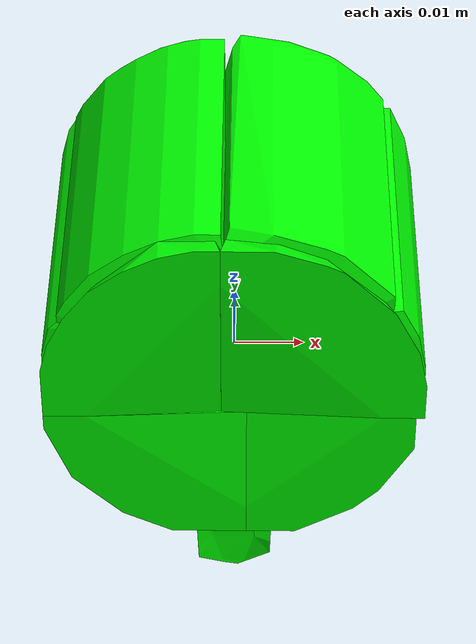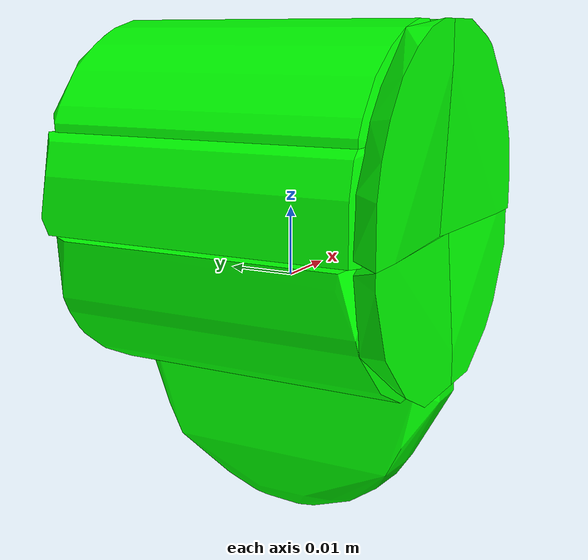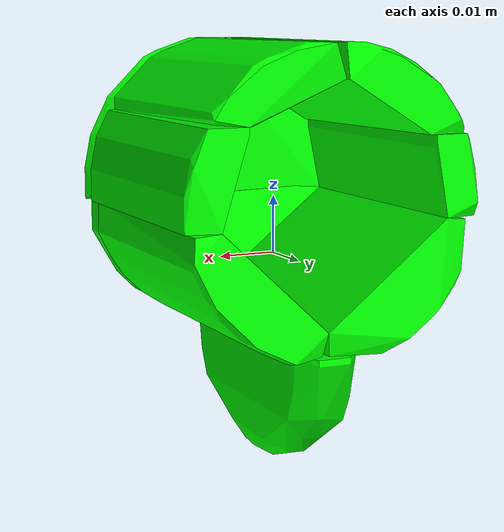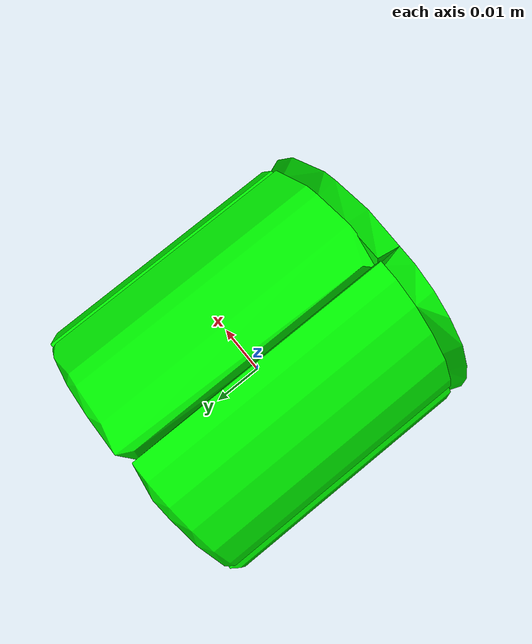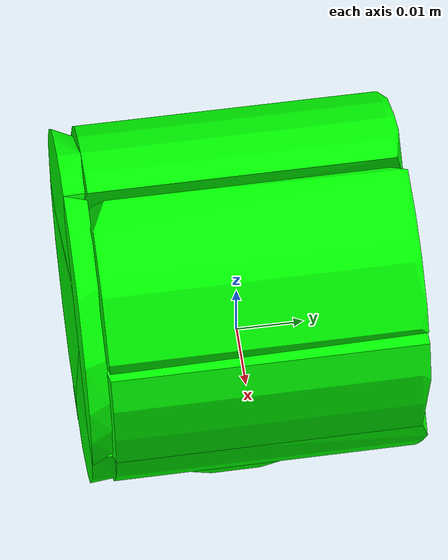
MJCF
<mujoco model="shapenet9-28">
  <asset>
    <mesh file="meshes/shapenet9-28/shapenet9-28_0.stl" name="shapenet9-28_0" scale="0.1 0.1 0.1"/>
    <mesh file="meshes/shapenet9-28/shapenet9-28_1.stl" name="shapenet9-28_1" scale="0.1 0.1 0.1"/>
    <mesh file="meshes/shapenet9-28/shapenet9-28_2.stl" name="shapenet9-28_2" scale="0.1 0.1 0.1"/>
    <mesh file="meshes/shapenet9-28/shapenet9-28_3.stl" name="shapenet9-28_3" scale="0.1 0.1 0.1"/>
    <mesh file="meshes/shapenet9-28/shapenet9-28_4.stl" name="shapenet9-28_4" scale="0.1 0.1 0.1"/>
    <mesh file="meshes/shapenet9-28/shapenet9-28_5.stl" name="shapenet9-28_5" scale="0.1 0.1 0.1"/>
    <mesh file="meshes/shapenet9-28/shapenet9-28_6.stl" name="shapenet9-28_6" scale="0.1 0.1 0.1"/>
    <mesh file="meshes/shapenet9-28/shapenet9-28_7.stl" name="shapenet9-28_7" scale="0.1 0.1 0.1"/>
    <mesh file="meshes/shapenet9-28/shapenet9-28_8.stl" name="shapenet9-28_8" scale="0.1 0.1 0.1"/>
    <mesh file="meshes/shapenet9-28/shapenet9-28_9.stl" name="shapenet9-28_9" scale="0.1 0.1 0.1"/>
    <mesh file="meshes/shapenet9-28/shapenet9-28_10.stl" name="shapenet9-28_10" scale="0.1 0.1 0.1"/>
  </asset>
  <worldbody>
    <body>
      <body name="collision">
        <geom pos="0 0 0" mesh="shapenet9-28_0" type="mesh" solimp="0.998 0.998 0.001" solref="0.001 1" density="100" friction="0.95 0.3 0.1" rgba="0 1 0 1" group="1" condim="4"/>
        <geom pos="0 0 0" mesh="shapenet9-28_1" type="mesh" solimp="0.998 0.998 0.001" solref="0.001 1" density="100" friction="0.95 0.3 0.1" rgba="0 1 0 1" group="1" condim="4"/>
        <geom pos="0 0 0" mesh="shapenet9-28_2" type="mesh" solimp="0.998 0.998 0.001" solref="0.001 1" density="100" friction="0.95 0.3 0.1" rgba="0 1 0 1" group="1" condim="4"/>
        <geom pos="0 0 0" mesh="shapenet9-28_3" type="mesh" solimp="0.998 0.998 0.001" solref="0.001 1" density="100" friction="0.95 0.3 0.1" rgba="0 1 0 1" group="1" condim="4"/>
        <geom pos="0 0 0" mesh="shapenet9-28_4" type="mesh" solimp="0.998 0.998 0.001" solref="0.001 1" density="100" friction="0.95 0.3 0.1" rgba="0 1 0 1" group="1" condim="4"/>
        <geom pos="0 0 0" mesh="shapenet9-28_5" type="mesh" solimp="0.998 0.998 0.001" solref="0.001 1" density="100" friction="0.95 0.3 0.1" rgba="0 1 0 1" group="1" condim="4"/>
        <geom pos="0 0 0" mesh="shapenet9-28_6" type="mesh" solimp="0.998 0.998 0.001" solref="0.001 1" density="100" friction="0.95 0.3 0.1" rgba="0 1 0 1" group="1" condim="4"/>
        <geom pos="0 0 0" mesh="shapenet9-28_7" type="mesh" solimp="0.998 0.998 0.001" solref="0.001 1" density="100" friction="0.95 0.3 0.1" rgba="0 1 0 1" group="1" condim="4"/>
        <geom pos="0 0 0" mesh="shapenet9-28_8" type="mesh" solimp="0.998 0.998 0.001" solref="0.001 1" density="100" friction="0.95 0.3 0.1" rgba="0 1 0 1" group="1" condim="4"/>
        <geom pos="0 0 0" mesh="shapenet9-28_9" type="mesh" solimp="0.998 0.998 0.001" solref="0.001 1" density="100" friction="0.95 0.3 0.1" rgba="0 1 0 1" group="1" condim="4"/>
        <geom pos="0 0 0" mesh="shapenet9-28_10" type="mesh" solimp="0.998 0.998 0.001" solref="0.001 1" density="100" friction="0.95 0.3 0.1" rgba="0 1 0 1" group="1" condim="4"/>
      </body>
      <body name="visual">
        <geom pos="0 0 0" mesh="shapenet9-28_0" type="mesh" rgba="0 1 0 1" conaffinity="0" contype="0" group="0" mass="0.0001"/>
        <geom pos="0 0 0" mesh="shapenet9-28_1" type="mesh" rgba="0 1 0 1" conaffinity="0" contype="0" group="0" mass="0.0001"/>
        <geom pos="0 0 0" mesh="shapenet9-28_2" type="mesh" rgba="0 1 0 1" conaffinity="0" contype="0" group="0" mass="0.0001"/>
        <geom pos="0 0 0" mesh="shapenet9-28_3" type="mesh" rgba="0 1 0 1" conaffinity="0" contype="0" group="0" mass="0.0001"/>
        <geom pos="0 0 0" mesh="shapenet9-28_4" type="mesh" rgba="0 1 0 1" conaffinity="0" contype="0" group="0" mass="0.0001"/>
        <geom pos="0 0 0" mesh="shapenet9-28_5" type="mesh" rgba="0 1 0 1" conaffinity="0" contype="0" group="0" mass="0.0001"/>
        <geom pos="0 0 0" mesh="shapenet9-28_6" type="mesh" rgba="0 1 0 1" conaffinity="0" contype="0" group="0" mass="0.0001"/>
        <geom pos="0 0 0" mesh="shapenet9-28_7" type="mesh" rgba="0 1 0 1" conaffinity="0" contype="0" group="0" mass="0.0001"/>
        <geom pos="0 0 0" mesh="shapenet9-28_8" type="mesh" rgba="0 1 0 1" conaffinity="0" contype="0" group="0" mass="0.0001"/>
        <geom pos="0 0 0" mesh="shapenet9-28_9" type="mesh" rgba="0 1 0 1" conaffinity="0" contype="0" group="0" mass="0.0001"/>
        <geom pos="0 0 0" mesh="shapenet9-28_10" type="mesh" rgba="0 1 0 1" conaffinity="0" contype="0" group="0" mass="0.0001"/>
      </body>
      <site rgba="0 0 0 0" size="0.005" pos="0 0 -0.06" name="bottom_site"/>
      <site rgba="0 0 0 0" size="0.005" pos="0 0 0.04" name="top_site"/>
      <site rgba="0 0 0 0" size="0.005" pos="0.025 0.025 0" name="horizontal_radius_site"/>
    </body>
  </worldbody>
</mujoco>
